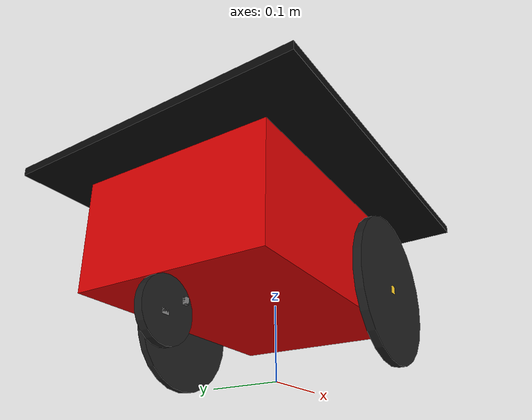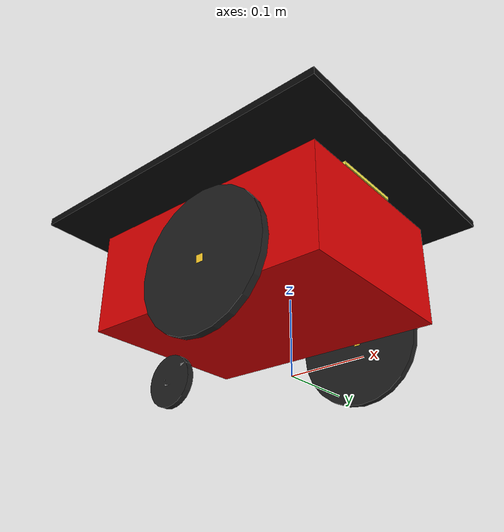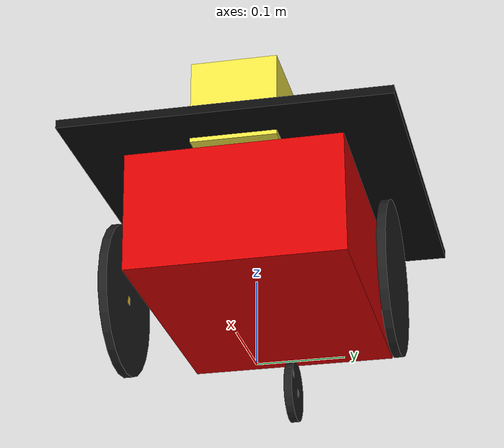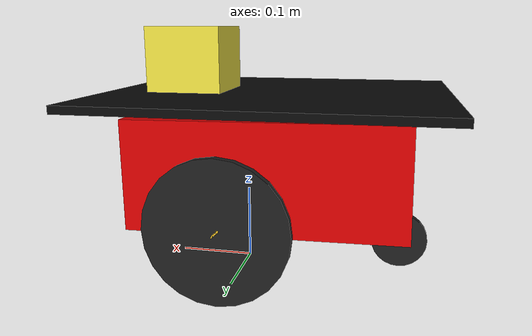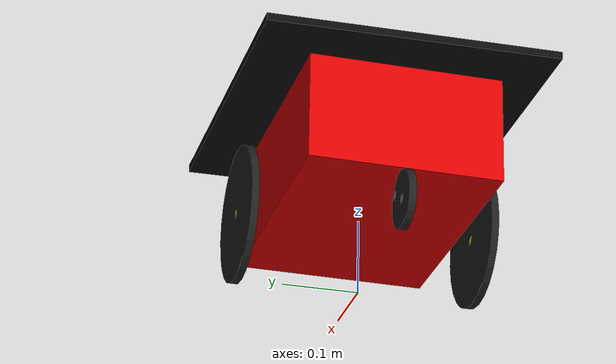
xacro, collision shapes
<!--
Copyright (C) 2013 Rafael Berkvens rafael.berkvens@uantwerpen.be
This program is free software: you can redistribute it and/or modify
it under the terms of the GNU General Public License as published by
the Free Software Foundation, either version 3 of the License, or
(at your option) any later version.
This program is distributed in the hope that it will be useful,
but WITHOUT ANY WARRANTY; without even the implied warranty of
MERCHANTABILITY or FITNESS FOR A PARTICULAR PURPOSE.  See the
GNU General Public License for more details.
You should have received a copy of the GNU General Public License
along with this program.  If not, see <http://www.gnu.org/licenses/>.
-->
<?xml version="1.0"?>

<robot name="pioneer3dx" xmlns:xacro="http://ros.org/wiki/xacro">

    <!-- import all gazebo-customization elements, including gazebo colors -->
    <xacro:include filename="$(find p3dx_description)/urdf/pioneer3dx.gazebo" />
    <!-- import the pioneer 3dx's wheels -->
    <xacro:include filename="$(find p3dx_description)/urdf/pioneer3dx_wheel.xacro" />

    <link name="robot"></link>

  <!-- chassis -->
    <link name="base_link">
        <inertial>
            <mass value="3.5" />
            <origin xyz="-0.05 0 0" />
            <inertia ixx="1" ixy="0" ixz="0" iyy="1" iyz="0" izz="1" />
        </inertial>

        <visual name="base_visual">
            <origin xyz="-0.045 0 0.148" rpy="0 0 0" />
            <geometry name="pioneer_geom">
                <mesh filename="package://p3dx_description/meshes/chassis.stl" />
            </geometry>
            <material name="ChassisRed">
                <color rgba="0.851 0.0 0.0 1.0" />
            </material>
        </visual>

        <collision>
            <origin xyz="-0.045 0 0.145" rpy="0.01 0.01 0.01" />
            <geometry>
                <box size="0.35 0.25 0.14" />
            </geometry>
        </collision>
    </link>

    <joint name="robot_dummy" type="fixed">
        <parent link="robot"/>
        <child link="base_link"/>
    </joint>
    <!-- top_plate -->
    <link name="top_plate">
        <inertial>
            <mass value="0.01" />
            <origin xyz="0 0 0" />
            <inertia ixx="1" ixy="0" ixz="0" iyy="1" iyz="0" izz="1" />
        </inertial>

        <visual name="base_visual">
            <origin xyz="0 0 0" rpy="0 0 0" />
            <geometry name="top_geom">
                <mesh filename="package://p3dx_description/meshes/top.stl" />
            </geometry>

            <material name="TopBlack">
                <color rgba="0.038 0.038 0.038 1.0" />
            </material>
        </visual>

        <collision>
            <origin xyz="0.0 0 0" rpy="0 0 0" />
            <geometry name="pioneer_geom">
                <box size="0.45 0.38 0.01" />
            </geometry>
        </collision>
    </link>

    <joint name="base_top_joint" type="fixed">
        <origin xyz="-0.045 0 0.234" rpy="0 0 0" />
        <parent link="base_link" />
        <child link="top_plate" />
    </joint>

    <!-- swivel -->
    <link name="swivel">
        <inertial>
            <mass value="0.1" />
            <origin xyz="0 0 0" />
            <inertia ixx="0.01" ixy="0" ixz="0" iyy="0.01" iyz="0" izz="0.01" />
        </inertial>

        <visual name="base_visual">
            <origin xyz="0 0 0" rpy="0 0 0" />
            <geometry name="pioneer_geom">
                <mesh filename="package://p3dx_description/meshes/swivel.stl" />
            </geometry>
            <material name="swivel">
                <color rgba="0.5 0.5 0.5 1" />
            </material>
        </visual>

        <collision>
            <origin xyz="0 0 0" rpy="0 0 0" />
            <geometry>
                <box size="0.01 0.01 0.01" />
            </geometry>
        </collision>
    </link>

    <joint name="base_swivel_joint" type="continuous">
        <origin xyz="-0.185 0 0.055" rpy="0 0 0" />
        <axis xyz="0 0 1" />
        <anchor xyz="0 0 0" />
        <limit effort="100" velocity="100" k_velocity="0" />
        <joint_properties damping="0.0" friction="0.0" />
        <parent link="base_link" />
        <child link="swivel" />
    </joint>

    <!-- center_hubcap -->
    <link name="center_hubcap">
        <inertial>
            <mass value="0.01" />
            <origin xyz="0 0 0" />
            <inertia ixx="0.012411765597" ixy="-0.000711733678" ixz="0.00050272983"
                iyy="0.015218160428" iyz="-0.000004273467" izz="0.011763977943" />
        </inertial>

        <visual name="base_visual">
            <origin xyz="0 0 0" rpy="0 0 0" />
            <geometry name="pioneer_geom">
                <mesh filename="package://p3dx_description/meshes/center_hubcap.stl" />
            </geometry>
            <material name="swivel">
                <color rgba="0.5 0.5 0.5 1" />
            </material>
        </visual>

        <collision>
            <origin xyz="0 0 0" rpy="0 0 0" />
            <geometry>
                <box size="0.01 0.01 0.01" />
            </geometry>
        </collision>
    </link>

    <joint name="swivel_hubcap_joint" type="continuous">
        <origin xyz="-0.026 0 -0.016" rpy="0 0 0" />
        <axis xyz="0 1 0" />
        <anchor xyz="0 0 0" />
        <limit effort="100" velocity="100" k_velocity="0" />
        <joint_properties damping="0.0" friction="0.0" />
        <parent link="swivel" />
        <child link="center_wheel" />
    </joint>

    <!-- center_wheel -->
    <link name="center_wheel">
        <inertial>
            <mass value="0.1" />
            <origin xyz="0 0 0" />
            <inertia ixx="0.012411765597" ixy="-0.000711733678" ixz="0.00050272983"
                iyy="0.015218160428" iyz="-0.000004273467" izz="0.011763977943" />
        </inertial>

        <visual name="base_visual">
            <origin xyz="0 0 0" rpy="0 0 0" />
            <geometry name="pioneer_geom">
                <mesh filename="package://p3dx_description/meshes/center_wheel.stl" />
            </geometry>
            <material name="WheelBlack">
                <color rgba="0.117 0.117 0.117 1" />
            </material>
        </visual>

        <collision>
            <origin xyz="0 0 0" rpy="${-3.1415927/2.0} 0 0" />
            <geometry>
                <cylinder radius="0.0375" length="0.01" />
            </geometry>
        </collision>
    </link>

    <joint name="center_wheel_joint" type="fixed">
        <origin xyz="-0.0035 0 -0.001" rpy="0 0 0"/>
        <parent link="center_wheel"/>
        <child link="center_hubcap"/>
    </joint>

    <xacro:p3dx_wheel suffix="left" parent="base_link" reflect="1"/>
    <xacro:p3dx_wheel suffix="right" parent="base_link" reflect="-1"/>

    <!-- front_sonar -->
    <link name="front_sonar">
        <inertial>
            <mass value="0.0001" />
            <origin xyz="0 0 0" />
            <inertia ixx="1" ixy="0" ixz="0" iyy="1" iyz="0" izz="1" />
        </inertial>

        <visual name="front_sonar_vis">
            <origin rpy="0 0 0" xyz="0 0 0" />
            <geometry name="pioneer_geom">
                <mesh filename="package://p3dx_description/meshes/front_sonar.stl" />
            </geometry>
            <material name="SonarYellow">
                <color rgba="0.715 0.583 0.210 1.0" />
            </material>
        </visual>

        <collision>
            <origin rpy="0 0 0" xyz="0 0 0" />
            <geometry>
                <box size="0.01 0.01 0.01" />
            </geometry>
        </collision>
    </link>

    <joint name="base_front_joint" type="fixed">
        <origin rpy="0 0 0" xyz="0.109 0 0.209" />
        <parent link="base_link" />
        <child link="front_sonar" />
    </joint>

    <!-- lms100 laser -->
    <link name="lms100">
        <inertial>
            <mass value="1e-5" />
            <origin xyz="0 0 0" rpy="0 0 0" />
            <inertia ixx="1e-6" ixy="0" ixz="0" iyy="1e-6" iyz="0" izz="1e-6" />
        </inertial>

        <visual>
            <origin xyz="0 0 0" rpy="0 0 0" />
            <geometry>
                <mesh filename="package://p3dx_description/meshes/lms100.dae" />
            </geometry>
        </visual>

        <collision>
            <origin xyz="0 0 0" rpy="0 0 0" />
            <geometry>
                <box size="0.1 0.1 0.1" />
            </geometry>
        </collision>
    </link>

    <joint name="lms100_joint" type="fixed">
        <axis xyz="0 1 0" />
        <origin xyz="0.075 0 0.274" rpy="0 0 0" />
        <parent link="base_link" />
        <child link="lms100" />
    </joint>

</robot>

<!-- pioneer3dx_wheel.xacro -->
<robot xmlns:xacro="http://ros.org/wiki/xacro">

	<!-- properties (constants) -->
	<property name="M_PI" value="3.14159" />

	<!-- right/left hubcap + wheel -->
	<xacro:macro name="p3dx_wheel" params="suffix parent reflect">

		<!-- wheel -->
		<link name="p3dx_${suffix}_wheel">
			<inertial>
				<mass value="0.5" />
				<origin xyz="0 0 0" />
				<inertia ixx="0.012411765597" ixy="0" ixz="0" iyy="0.015218160428"
					iyz="0" izz="0.011763977943" />
			</inertial>

			<visual name="base_visual">
				<origin xyz="0 0 0" rpy="0 0 0" />
				<geometry name="pioneer_geom">
					<mesh filename="package://p3dx_description/meshes/${suffix}_wheel.stl" />
				</geometry>
				<material name="WheelBlack">
					<color rgba="0.117 0.117 0.117 1" />
				</material>
			</visual>

			<collision>
				<origin xyz="0 0 0" rpy="${-3.1415927/2} 0 0" />
				<geometry>
					<cylinder radius="0.09" length="0.01" />
				</geometry>
			</collision>
		</link>

		<joint name="base_${suffix}_hubcap_joint" type="fixed">
			<origin xyz="0 0 0" rpy="0 0 0" />
			<parent link="p3dx_${suffix}_wheel" />
			<child link="p3dx_${suffix}_hubcap" />
		</joint>

		<!-- hubcap -->
		<link name="p3dx_${suffix}_hubcap">
			<inertial>
				<mass value="0.01" />
				<origin xyz="0 0 0" />
				<inertia ixx="0.012411765597" ixy="0" ixz="0" iyy="0.015218160428"
					iyz="0" izz="0.011763977943" />
			</inertial>

			<visual name="base_visual">
				<origin xyz="0 0 0" rpy="0 0 0" />
				<geometry name="pioneer_geom">
					<mesh filename="package://p3dx_description/meshes/${suffix}_hubcap.stl" />
				</geometry>

				<material name="HubcapYellow">
					<color rgba="1.0 0.811 0.151 1.0" />
				</material>
			</visual>

			<collision>
				<origin xyz="0 0 0" rpy="0 0 0" />
				<geometry>
					<box size="0.01 0.01 0.01" />
				</geometry>
			</collision>
        </link>

        <joint name="base_${suffix}_wheel_joint" type="continuous">
            <axis xyz="0 1 0" />
            <anchor xyz="0 0 0" />
            <limit effort="100" velocity="100" />
            <joint_properties damping="0.0" friction="0.0" />
            <origin xyz="0 ${reflect*0.158} 0.091" rpy="0 0 0" />
            <parent link="base_link" />
            <child link="p3dx_${suffix}_wheel" />
        </joint>

        <!-- gazebo elements -->
    <transmission name="${parent}_${suffix}_wheel_trans">
        <type>pr2_mechanism_model/SimpleTransmission</type>
        <joint name="base_${suffix}_wheel_joint">
            <hardwareInterface>EffortJointInterface</hardwareInterface>
        </joint>
        <actuator name="base_${suffix}_wheel_motor">
            <hardwareInterface>EffortJointInterface</hardwareInterface>
            <mechanicalReduction>${reflect * 624/35 * 80/19}</mechanicalReduction>
        </actuator>
    </transmission>

        <gazebo reference="p3dx_${suffix}_hubcap">
            <material>Gazebo/Yellow</material>
        </gazebo>

        <gazebo reference="p3dx_${suffix}_wheel">
            <material>Gazebo/Black</material>
            <mu1>0.5</mu1>
            <mu2>50.0</mu2>
            <kp>100000000.0</kp>
            <kd>1.0</kd>
        </gazebo>

    </xacro:macro>

</robot>
